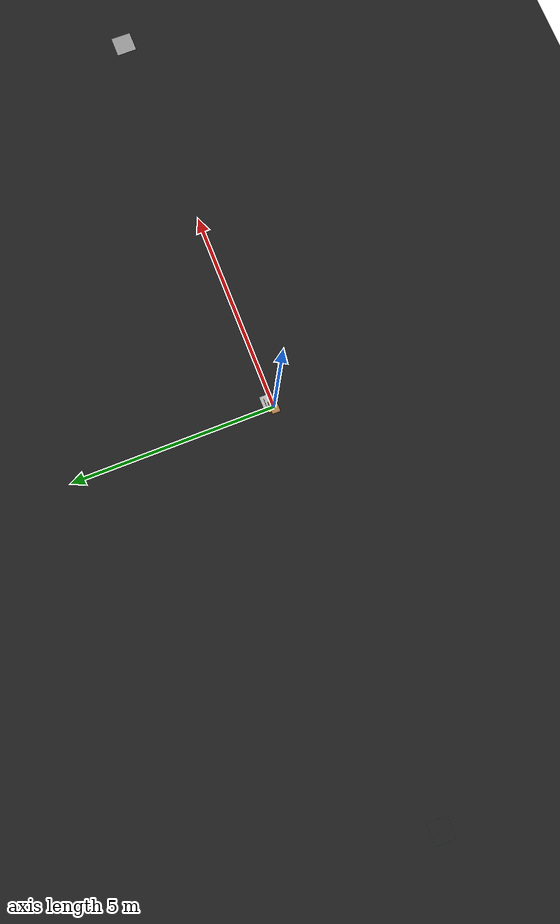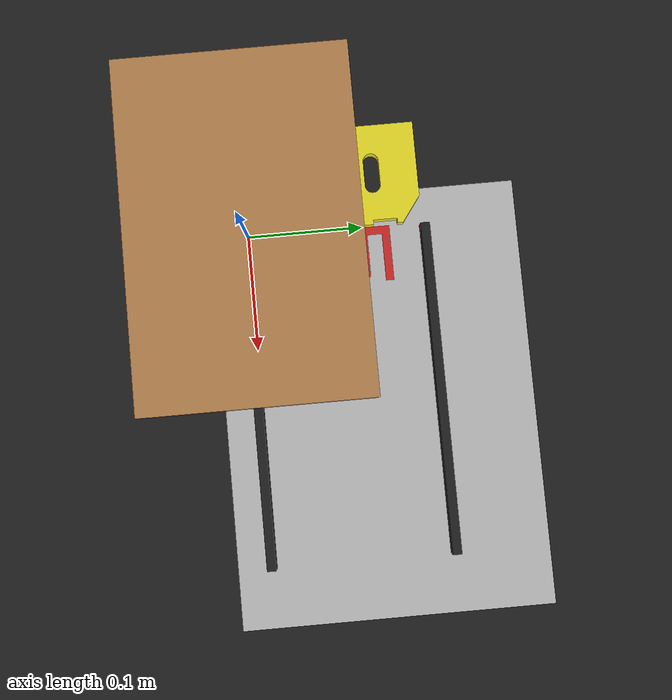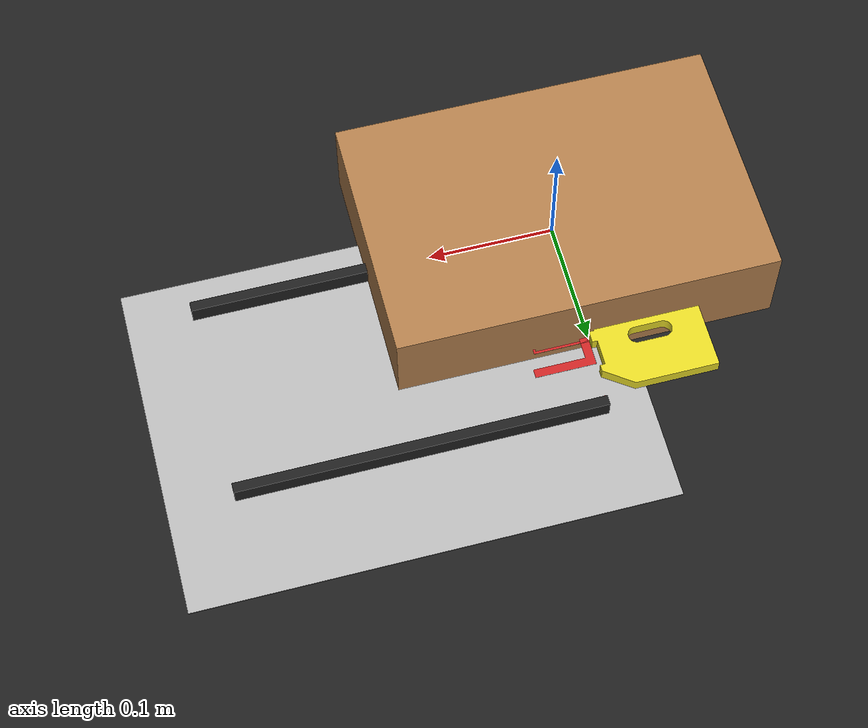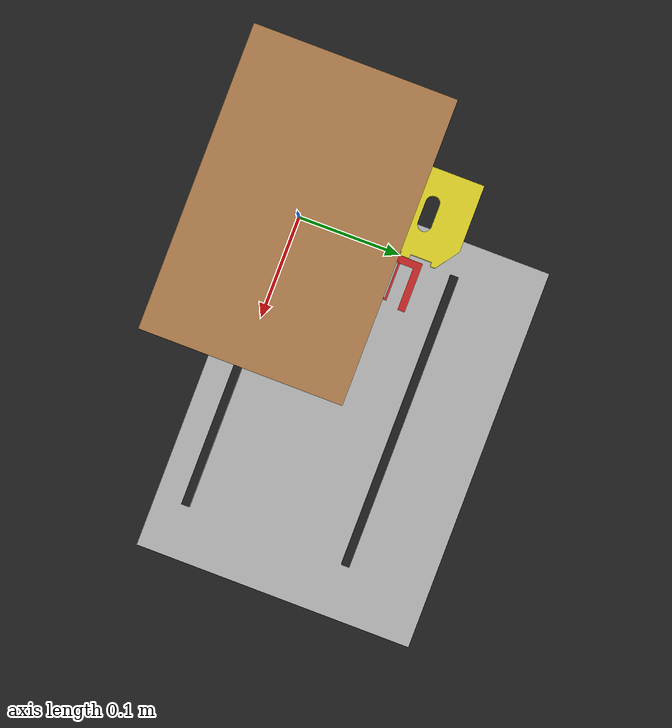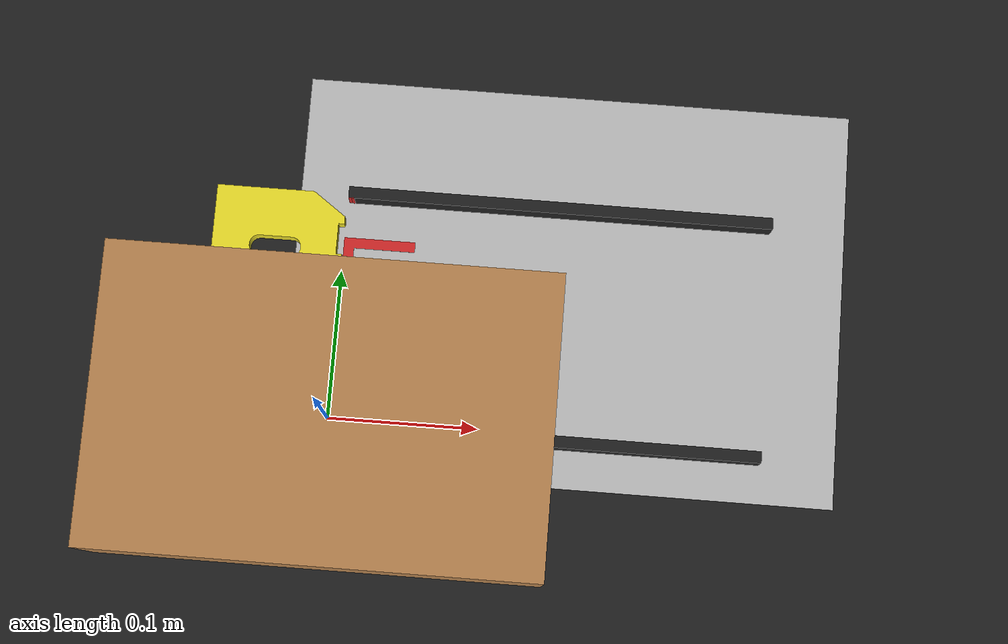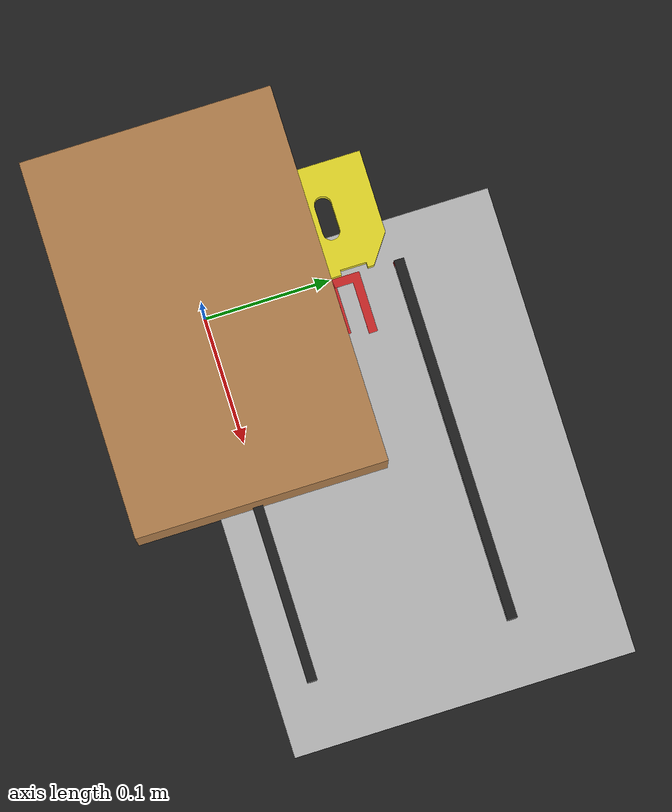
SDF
<sdf version='1.6'>
	<world name='default'>

		<model name='ground_plane'>
			<static>1</static>
			<pose>0 0 -0.02 0 -0 0</pose>
			<link name='link'>
				<collision name='collision'>
					<geometry>
						<plane>
							<normal>0 0 1</normal>
							<size>100 100</size>
						</plane>
					</geometry>
					<surface>
						<friction>
							<ode>
								<mu>100</mu>
								<mu2>50</mu2>
							</ode>
						</friction>
						<bounce />
						<contact>
							<ode />
						</contact>
					</surface>
					<max_contacts>10</max_contacts>
				</collision>
				<visual name='visual'>
					<cast_shadows>0</cast_shadows>
					<geometry>
						<plane>
							<normal>0 0 1</normal>
							<size>100 100</size>
						</plane>
					</geometry>
					<material>
						<script>
							<uri>file://media/materials/scripts/gazebo.material</uri>
							<name>Gazebo/Black</name>
						</script>
					</material>
				</visual>
				<gravity>0</gravity>
			</link>
		</model>

		<model name='beam'>
			<static>1</static>
			<link name='beam_link'>
				<visual name='visual'>
					<geometry>
						<mesh>
							<uri>model://beam/meshes/beam.stl</uri>
						</mesh>
					</geometry>
					<material>
						<script>
							<uri>file://media/materials/scripts/gazebo.material</uri>
							<name>Gazebo/Black</name>
						</script>
					</material>
				</visual>
				<gravity>0</gravity>
			</link>
		</model>

		<model name='beam_weld_begin'>
			<static>1</static>
			<link name='beam_weld_begin_link'>
				<visual name='visual'>
					<geometry>
						<mesh>
							<uri>model://beam_weld/meshes/beam_weld.stl</uri>
						</mesh>
					</geometry>
					<material>
						<script>
							<uri>file://media/materials/scripts/gazebo.material</uri>
							<name>Gazebo/Red</name>
						</script>
					</material>
				</visual>
				<gravity>0</gravity>
			</link>
		</model>

		<model name='beam_weld_end'>
			<static>1</static>
			<link name='beam_weld_end_link'>
				<visual name='visual'>
					<geometry>
						<mesh>
							<uri>model://beam_weld/meshes/beam_weld.stl</uri>
						</mesh>
					</geometry>
					<material>
						<script>
							<uri>file://media/materials/scripts/gazebo.material</uri>
							<name>Gazebo/Red</name>
						</script>
					</material>
				</visual>
				<gravity>0</gravity>
			</link>
		</model>

		<model name='beam_weld_middle_begin'>
			<static>1</static>
			<link name='beam_weld_middle_begin_link'>
				<visual name='visual'>
					<geometry>
						<mesh>
							<scale>2 1 1</scale>
							<uri>model://beam_weld/meshes/beam_weld.stl</uri>
						</mesh>
					</geometry>
					<material>
						<script>
							<uri>file://media/materials/scripts/gazebo.material</uri>
							<name>Gazebo/Red</name>
						</script>
					</material>
				</visual>
				<gravity>0</gravity>
			</link>
		</model>

		<model name='beam_weld_middle_end'>
			<static>1</static>
			<link name='beam_weld_middle_end_link'>
				<visual name='visual'>
					<geometry>
						<mesh>
							<uri>model://beam_weld/meshes/beam_weld.stl</uri>
						</mesh>
					</geometry>
					<material>
						<script>
							<uri>file://media/materials/scripts/gazebo.material</uri>
							<name>Gazebo/Red</name>
						</script>
					</material>
				</visual>
				<gravity>0</gravity>
			</link>
		</model>

		<model name='beam_weld_rectangle'>
			<static>1</static>
			<link name='beam_weld_rectangle_link'>
				<visual name='visual'>
					<geometry>
						<mesh>
							<uri>model://beam_weld_u_outline/meshes/beam_weld_u_outline.stl</uri>
						</mesh>
					</geometry>
					<material>
						<script>
							<uri>file://media/materials/scripts/gazebo.material</uri>
							<name>Gazebo/Red</name>
						</script>
					</material>
				</visual>
				<gravity>0</gravity>
			</link>
		</model>

		<model name='beam_weld_rectangle_top'>
			<static>1</static>
			<link name='beam_weld_rectangle_top_link'>
				<visual name='visual'>
					<geometry>
						<mesh>
							<uri>model://beam_weld_rectangle/meshes/beam_weld_rectangle.stl</uri>
						</mesh>
					</geometry>
					<material>
						<script>
							<uri>file://media/materials/scripts/gazebo.material</uri>
							<name>Gazebo/Red</name>
						</script>
					</material>
				</visual>
				<gravity>0</gravity>
			</link>
		</model>

		<model name="beam_weld_u_side">
			<static>1</static>
			<link name='beam_weld_u_side_link'>
				<visual name="visual">
					<geometry>
						<mesh>
							<scale>2 1 1</scale>
							<uri>model://beam_weld_u_side/meshes/beam_weld_u_side.stl</uri>
						</mesh>
					</geometry>
					<material>
						<script>
							<uri>file://media/materials/scripts/gazebo.material</uri>
							<name>Gazebo/Red</name>
						</script>
					</material>
				</visual>
				<gravity>0</gravity>
			</link>
		</model>

		<model name="beam_weld_u_top">
			<static>1</static>
			<link name='beam_weld_u_top_link'>
				<visual name="visual">
					<geometry>
						<mesh>
							<uri>model://beam_weld_u/meshes/beam_weld_u.stl</uri>
						</mesh>
					</geometry>
					<material>
						<script>
							<uri>file://media/materials/scripts/gazebo.material</uri>
							<name>Gazebo/Yellow</name>
						</script>
					</material>
				</visual>
				<gravity>0</gravity>
			</link>
		</model>

		<model name="beam_weld_u_bottom">
			<static>1</static>
			<link name='beam_weld_u_bottom_link'>
				<visual name="visual">
					<geometry>
						<mesh>
							<uri>model://beam_weld_u/meshes/beam_weld_u.stl</uri>
						</mesh>
					</geometry>
					<material>
						<script>
							<uri>file://media/materials/scripts/gazebo.material</uri>
							<name>Gazebo/Yellow</name>
						</script>
					</material>
				</visual>
				<gravity>0</gravity>
			</link>
		</model>

		<model name="calibration_pattern">
			<static>1</static>
			<pose>0.153675 0.10245 -0.015 0 0 0</pose>
			<link name="calibration_pattern_link">
				<visual name="visual">
					<cast_shadows>false</cast_shadows>
					<geometry>
						<box>
							<size>0.37565 0.2732 0.001</size>
						</box>
					</geometry>
					<material>
						<script>
							<uri>model://calibration_pattern/materials/scripts</uri>
							<uri>model://calibration_pattern/materials/textures</uri>
							<name>calibration_pattern</name>
						</script>
					</material>
				</visual>
				<gravity>0</gravity>
			</link>
		</model>

		<model name='table_plane'>
			<static>1</static>
			<pose>10.084 0.084 -0.015 0 0 0</pose>
			<link name='link'>
				<visual name='visual'>
					<geometry>
						<plane>
							<size>0.494 0.494</size>
						</plane>
					</geometry>
					<material>
						<script>
							<name>Gazebo/Grey</name>
							<uri>file://media/materials/scripts/gazebo.material</uri>
						</script>
					</material>
				</visual>
				<gravity>0</gravity>
			</link>
		</model>

		<model name='table'>
			<static>1</static>
			<pose>-10.163 -0.163 -0.015 0 0 0</pose>
			<model name='top'>
				<pose>0.247 0.0 0 0 0 0</pose>
				<link name='link'>
					<visual name='visual'>
						<geometry>
							<plane>
								<size>0.494 0.002</size>
							</plane>
						</geometry>
						<material>
							<script>
								<name>Gazebo/Green</name>
								<uri>file://media/materials/scripts/gazebo.material</uri>
							</script>
						</material>
					</visual>
					<gravity>0</gravity>
				</link>
			</model>
			<model name='bottom'>
				<pose>0.247 0.494 0 0 0 0</pose>
				<link name='link'>
					<visual name='visual'>
						<geometry>
							<plane>
								<size>0.494 0.002</size>
							</plane>
						</geometry>
						<material>
							<script>
								<name>Gazebo/Green</name>
								<uri>file://media/materials/scripts/gazebo.material</uri>
							</script>
						</material>
					</visual>
					<gravity>0</gravity>
				</link>
			</model>
			<model name='left'>
				<pose>0.0 0.247 0 0 0 0</pose>
				<link name='link'>
					<visual name='visual'>
						<geometry>
							<plane>
								<size>0.002 0.494</size>
							</plane>
						</geometry>
						<material>
							<script>
								<name>Gazebo/Green</name>
								<uri>file://media/materials/scripts/gazebo.material</uri>
							</script>
						</material>
					</visual>
					<gravity>0</gravity>
				</link>
			</model>
			<model name='right'>
				<pose>0.494 0.247 0 0 0 0</pose>
				<link name='link'>
					<visual name='visual'>
						<geometry>
							<plane>
								<size>0.002 0.494</size>
							</plane>
						</geometry>
						<material>
							<script>
								<name>Gazebo/Green</name>
								<uri>file://media/materials/scripts/gazebo.material</uri>
							</script>
						</material>
					</visual>
					<gravity>0</gravity>
				</link>
			</model>
		</model>

		<model name='camera_projection_mapping'>
			<static>1</static>
			<link name='projector_link'>
				<visual name='projector_link_visual'>
					<geometry>
						<box>
							<size>0.3 0.2 0.1</size>
						</box>
					</geometry>
					<material>
						<script>
							<name>Gazebo/Wood</name>
							<uri>__default__</uri>
						</script>
					</material>
				</visual>
				<gravity>0</gravity>
				<self_collide>0</self_collide>
				<sensor name='virtual_camera' type='camera'>
					<camera name='projector_head'>
						<horizontal_fov>1.15</horizontal_fov>
						<image>
							<width>1920</width>
							<height>1080</height>
							<format>R8G8B8</format>
						</image>
						<clip>
							<near>0.1</near>
							<far>10.0</far>
						</clip>
						<noise>
							<type>gaussian</type>
							<mean>0</mean>
							<stddev>0</stddev>
						</noise>

						<lens>

							<intrinsics>
								<fx>2905.251583</fx>
								<fy>2916.04609</fy>
								<cx>871.37922195319618</cx>
								<cy>-79.749876934</cy>
								<s>0.0</s>
							</intrinsics>
						</lens>
					</camera>
					<visualize>0</visualize>
					<plugin name='camera_controller' filename='libgazebo_ros_camera.so'>
						<alwaysOn>true</alwaysOn>
						<updateRate>30</updateRate>
						<cameraName>virtual_camera</cameraName>
						<imageTopicName>image_raw</imageTopicName>
						<cameraInfoTopicName>camera_info</cameraInfoTopicName>
						<frameName>camera_link</frameName>

						<focalLengthX>2905.251583</focalLengthX>
						<focalLengthY>2916.04609</focalLengthY>
						<hackBaseline>0</hackBaseline>
						<CxPrime>871.37922195319618</CxPrime>
						<Cx>871.37922195319618</Cx>
						<Cy>-79.749876934</Cy>

						<distortionK1>-0.048368414149323344</distortionK1>
						<distortionK2>0.26114835052303170</distortionK2>
						<distortionT1>-0.0054634479663059369</distortionT1>
						<distortionT2>-0.0019473505228512493</distortionT2>
						<distortionK3>0</distortionK3>

						<robotNamespace>/</robotNamespace>
					</plugin>
				</sensor>
			</link>
			<static>1</static>
		</model>

		<physics type='ode'>
			<max_step_size>0.1</max_step_size>
			<real_time_factor>1</real_time_factor>
			<real_time_update_rate>10</real_time_update_rate>
			<max_contacts>3</max_contacts>
			<gravity>0 0 0</gravity>
			<ode>
				<solver>
					<min_step_size>0.1</min_step_size>
					<iters>1</iters>
				</solver>
			</ode>
		</physics>

		<scene>
			<ambient>1 1 1 1</ambient>
			<background>0 0 0 1</background>
			<shadows>1</shadows>
		</scene>

		<gui fullscreen='0'>
			<camera name='user_camera'>
				<pose>-0.186441 -0.351267 0.80691 0 0.898792 0.76959</pose>
				<view_controller>orbit</view_controller>
			</camera>
		</gui>
	</world>
</sdf>
